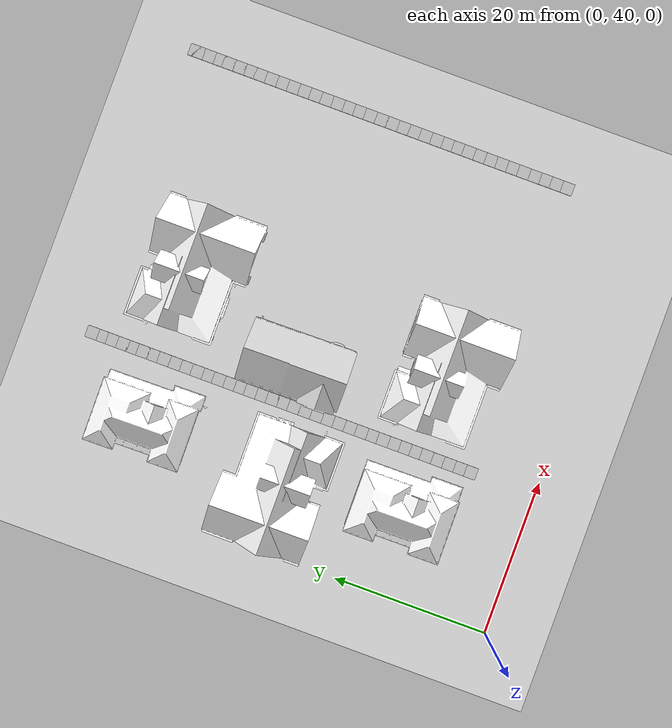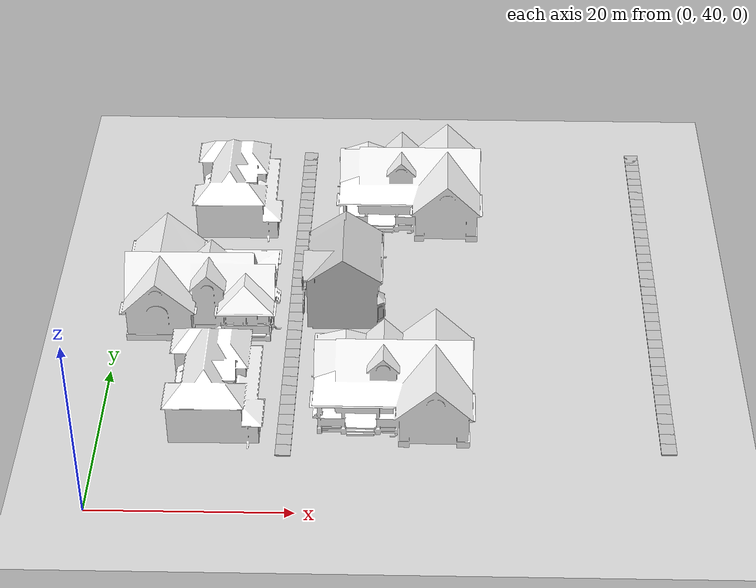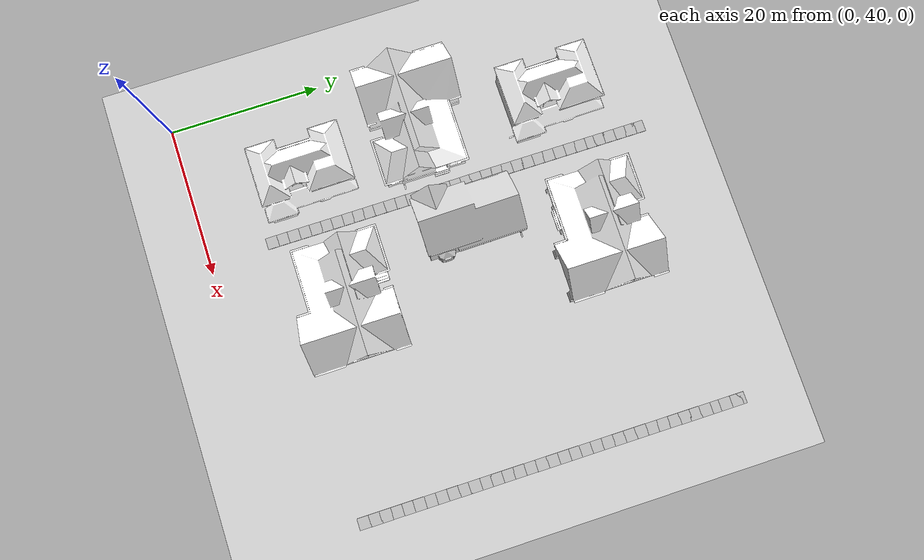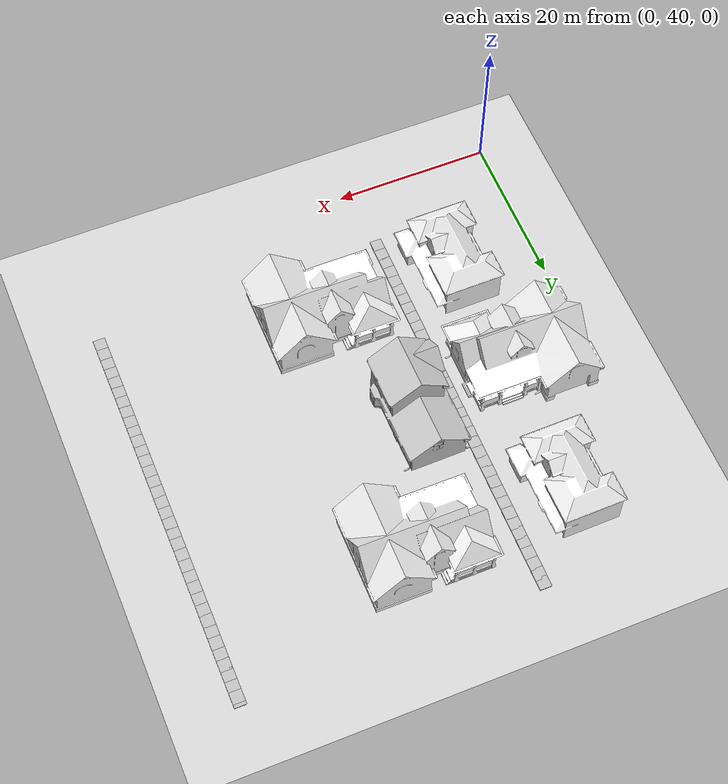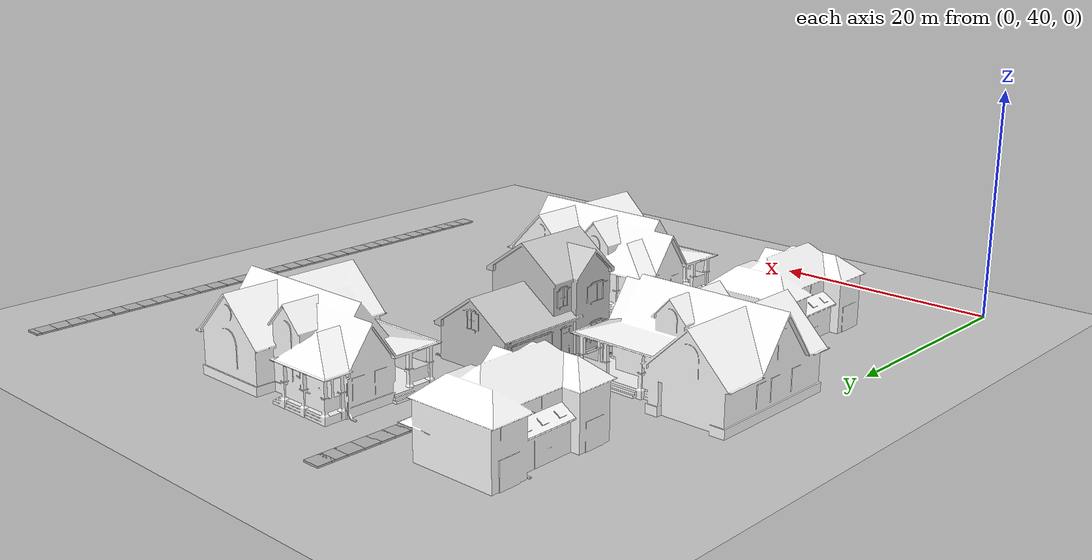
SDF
<sdf version="1.6">
 <world name="default">
  <model name="ground_plane">
   <pose>50 50 0 0 -0 0</pose>
   <static>1</static>
   <link name="link">
    <collision name="collision">
     <geometry><plane><normal>0 0 1</normal><size>100 100</size></plane></geometry>
     <surface>
      <contact><collide_bitmask>65535</collide_bitmask></contact>
      <friction><ode><mu>100</mu><mu2>50</mu2></ode></friction>
     </surface>
    </collision>
    <visual name="visual">
     <cast_shadows>0</cast_shadows>
     <geometry><plane><normal>0 0 1</normal><size>100 100</size></plane></geometry>
     <material>
      <script><uri>file://media/materials/scripts/gazebo.material</uri><name>Gazebo/Grey</name></script>
     </material>
    </visual>
   </link>
  </model>
  <model name="walkway_metal_straight_32">
   <static>1</static>
   <link name="link">
    <collision name="collision">
     <pose>0 0.762 0.076075 0 -0 0</pose>
     <geometry><box><size>1.524 1.524 0.15215</size></box></geometry>
    </collision>
    <visual name="visual">
     <geometry>
      <mesh><scale>0.001 0.001 0.001</scale><uri>model://walkway_metal_straight/meshes/mesh.obj</uri></mesh>
     </geometry>
    </visual>
   </link>
   <pose>18.3427 47.7684 0 0 -0 0</pose>
  </model>
  <model name="walkway_metal_straight_33">
   <static>1</static>
   <link name="link">
    <collision name="collision">
     <pose>0 0.762 0.076075 0 -0 0</pose>
     <geometry><box><size>1.524 1.524 0.15215</size></box></geometry>
    </collision>
    <visual name="visual">
     <geometry>
      <mesh><scale>0.001 0.001 0.001</scale><uri>model://walkway_metal_straight/meshes/mesh.obj</uri></mesh>
     </geometry>
    </visual>
   </link>
   <pose>18.3468 49.2696 0 0 -0 0</pose>
  </model>
  <model name="walkway_metal_straight_34">
   <static>1</static>
   <link name="link">
    <collision name="collision">
     <pose>0 0.762 0.076075 0 -0 0</pose>
     <geometry><box><size>1.524 1.524 0.15215</size></box></geometry>
    </collision>
    <visual name="visual">
     <geometry>
      <mesh><scale>0.001 0.001 0.001</scale><uri>model://walkway_metal_straight/meshes/mesh.obj</uri></mesh>
     </geometry>
    </visual>
   </link>
   <pose>18.3508 50.7068 0 0 -0 0</pose>
  </model>
  <model name="walkway_metal_straight_35">
   <static>1</static>
   <link name="link">
    <collision name="collision">
     <pose>0 0.762 0.076075 0 -0 0</pose>
     <geometry><box><size>1.524 1.524 0.15215</size></box></geometry>
    </collision>
    <visual name="visual">
     <geometry>
      <mesh><scale>0.001 0.001 0.001</scale><uri>model://walkway_metal_straight/meshes/mesh.obj</uri></mesh>
     </geometry>
    </visual>
   </link>
   <pose>18.3547 52.1825 0 0 -0 0</pose>
  </model>
  <model name="walkway_metal_straight_36">
   <static>1</static>
   <link name="link">
    <collision name="collision">
     <pose>0 0.762 0.076075 0 -0 0</pose>
     <geometry><box><size>1.524 1.524 0.15215</size></box></geometry>
    </collision>
    <visual name="visual">
     <geometry>
      <mesh><scale>0.001 0.001 0.001</scale><uri>model://walkway_metal_straight/meshes/mesh.obj</uri></mesh>
     </geometry>
    </visual>
   </link>
   <pose>18.3625 53.6972 0 0 -0 0</pose>
  </model>
  <model name="walkway_metal_straight_37">
   <static>1</static>
   <link name="link">
    <collision name="collision">
     <pose>0 0.762 0.076075 0 -0 0</pose>
     <geometry><box><size>1.524 1.524 0.15215</size></box></geometry>
    </collision>
    <visual name="visual">
     <geometry>
      <mesh><scale>0.001 0.001 0.001</scale><uri>model://walkway_metal_straight/meshes/mesh.obj</uri></mesh>
     </geometry>
    </visual>
   </link>
   <pose>18.3663 55.1075 0 0 -0 0</pose>
  </model>
  <model name="walkway_metal_straight_38">
   <static>1</static>
   <link name="link">
    <collision name="collision">
     <pose>0 0.762 0.076075 0 -0 0</pose>
     <geometry><box><size>1.524 1.524 0.15215</size></box></geometry>
    </collision>
    <visual name="visual">
     <geometry>
      <mesh><scale>0.001 0.001 0.001</scale><uri>model://walkway_metal_straight/meshes/mesh.obj</uri></mesh>
     </geometry>
    </visual>
   </link>
   <pose>18.3704 56.6101 0 0 -0 0</pose>
  </model>
  <model name="walkway_metal_straight_39">
   <static>1</static>
   <link name="link">
    <collision name="collision">
     <pose>0 0.762 0.076075 0 -0 0</pose>
     <geometry><box><size>1.524 1.524 0.15215</size></box></geometry>
    </collision>
    <visual name="visual">
     <geometry>
      <mesh><scale>0.001 0.001 0.001</scale><uri>model://walkway_metal_straight/meshes/mesh.obj</uri></mesh>
     </geometry>
    </visual>
   </link>
   <pose>18.3744 58.0331 0 0 -0 0</pose>
  </model>
  <model name="walkway_metal_straight_40">
   <static>1</static>
   <link name="link">
    <collision name="collision">
     <pose>0 0.762 0.076075 0 -0 0</pose>
     <geometry><box><size>1.524 1.524 0.15215</size></box></geometry>
    </collision>
    <visual name="visual">
     <geometry>
      <mesh><scale>0.001 0.001 0.001</scale><uri>model://walkway_metal_straight/meshes/mesh.obj</uri></mesh>
     </geometry>
    </visual>
   </link>
   <pose>18.3739 59.4805 0 0 -0 0</pose>
  </model>
  <model name="walkway_metal_straight_41">
   <static>1</static>
   <link name="link">
    <collision name="collision">
     <pose>0 0.762 0.076075 0 -0 0</pose>
     <geometry><box><size>1.524 1.524 0.15215</size></box></geometry>
    </collision>
    <visual name="visual">
     <geometry>
      <mesh><scale>0.001 0.001 0.001</scale><uri>model://walkway_metal_straight/meshes/mesh.obj</uri></mesh>
     </geometry>
    </visual>
   </link>
   <pose>18.3743 60.9514 0 0 -0 0</pose>
  </model>
  <model name="walkway_metal_straight_42">
   <static>1</static>
   <link name="link">
    <collision name="collision">
     <pose>0 0.762 0.076075 0 -0 0</pose>
     <geometry><box><size>1.524 1.524 0.15215</size></box></geometry>
    </collision>
    <visual name="visual">
     <geometry>
      <mesh><scale>0.001 0.001 0.001</scale><uri>model://walkway_metal_straight/meshes/mesh.obj</uri></mesh>
     </geometry>
    </visual>
   </link>
   <pose>18.3759 62.3786 0 0 -0 0</pose>
  </model>
  <model name="walkway_metal_straight_43">
   <static>1</static>
   <link name="link">
    <collision name="collision">
     <pose>0 0.762 0.076075 0 -0 0</pose>
     <geometry><box><size>1.524 1.524 0.15215</size></box></geometry>
    </collision>
    <visual name="visual">
     <geometry>
      <mesh><scale>0.001 0.001 0.001</scale><uri>model://walkway_metal_straight/meshes/mesh.obj</uri></mesh>
     </geometry>
    </visual>
   </link>
   <pose>18.3772 63.8674 0 0 -0 0</pose>
  </model>
  <model name="walkway_metal_straight_44">
   <static>1</static>
   <link name="link">
    <collision name="collision">
     <pose>0 0.762 0.076075 0 -0 0</pose>
     <geometry><box><size>1.524 1.524 0.15215</size></box></geometry>
    </collision>
    <visual name="visual">
     <geometry>
      <mesh><scale>0.001 0.001 0.001</scale><uri>model://walkway_metal_straight/meshes/mesh.obj</uri></mesh>
     </geometry>
    </visual>
   </link>
   <pose>18.3815 65.3735 0 0 -0 0</pose>
  </model>
  <model name="walkway_metal_straight_45">
   <static>1</static>
   <link name="link">
    <collision name="collision">
     <pose>0 0.762 0.076075 0 -0 0</pose>
     <geometry><box><size>1.524 1.524 0.15215</size></box></geometry>
    </collision>
    <visual name="visual">
     <geometry>
      <mesh><scale>0.001 0.001 0.001</scale><uri>model://walkway_metal_straight/meshes/mesh.obj</uri></mesh>
     </geometry>
    </visual>
   </link>
   <pose>18.3856 66.8805 0 0 -0 0</pose>
  </model>
  <model name="walkway_metal_straight_46">
   <static>1</static>
   <link name="link">
    <collision name="collision">
     <pose>0 0.762 0.076075 0 -0 0</pose>
     <geometry><box><size>1.524 1.524 0.15215</size></box></geometry>
    </collision>
    <visual name="visual">
     <geometry>
      <mesh><scale>0.001 0.001 0.001</scale><uri>model://walkway_metal_straight/meshes/mesh.obj</uri></mesh>
     </geometry>
    </visual>
   </link>
   <pose>18.3831 68.3481 0 0 -0 0</pose>
  </model>
  <model name="walkway_metal_straight_47">
   <static>1</static>
   <link name="link">
    <collision name="collision">
     <pose>0 0.762 0.076075 0 -0 0</pose>
     <geometry><box><size>1.524 1.524 0.15215</size></box></geometry>
    </collision>
    <visual name="visual">
     <geometry>
      <mesh><scale>0.001 0.001 0.001</scale><uri>model://walkway_metal_straight/meshes/mesh.obj</uri></mesh>
     </geometry>
    </visual>
   </link>
   <pose>18.3874 69.8743 0 0 -0 0</pose>
  </model>
  <model name="walkway_metal_straight_48">
   <static>1</static>
   <link name="link">
    <collision name="collision">
     <pose>0 0.762 0.076075 0 -0 0</pose>
     <geometry><box><size>1.524 1.524 0.15215</size></box></geometry>
    </collision>
    <visual name="visual">
     <geometry>
      <mesh><scale>0.001 0.001 0.001</scale><uri>model://walkway_metal_straight/meshes/mesh.obj</uri></mesh>
     </geometry>
    </visual>
   </link>
   <pose>18.3874 71.4001 0 0 -0 0</pose>
  </model>
  <model name="walkway_metal_straight_49">
   <static>1</static>
   <link name="link">
    <collision name="collision">
     <pose>0 0.762 0.076075 0 -0 0</pose>
     <geometry><box><size>1.524 1.524 0.15215</size></box></geometry>
    </collision>
    <visual name="visual">
     <geometry>
      <mesh><scale>0.001 0.001 0.001</scale><uri>model://walkway_metal_straight/meshes/mesh.obj</uri></mesh>
     </geometry>
    </visual>
   </link>
   <pose>18.3915 72.8605 0 0 -0 0</pose>
  </model>
  <model name="walkway_metal_straight_50">
   <static>1</static>
   <link name="link">
    <collision name="collision">
     <pose>0 0.762 0.076075 0 -0 0</pose>
     <geometry><box><size>1.524 1.524 0.15215</size></box></geometry>
    </collision>
    <visual name="visual">
     <geometry>
      <mesh><scale>0.001 0.001 0.001</scale><uri>model://walkway_metal_straight/meshes/mesh.obj</uri></mesh>
     </geometry>
    </visual>
   </link>
   <pose>18.3838 74.2724 0 0 -0 0</pose>
  </model>
  <model name="walkway_metal_straight_51">
   <static>1</static>
   <link name="link">
    <collision name="collision">
     <pose>0 0.762 0.076075 0 -0 0</pose>
     <geometry><box><size>1.524 1.524 0.15215</size></box></geometry>
    </collision>
    <visual name="visual">
     <geometry>
      <mesh><scale>0.001 0.001 0.001</scale><uri>model://walkway_metal_straight/meshes/mesh.obj</uri></mesh>
     </geometry>
    </visual>
   </link>
   <pose>18.38 75.6675 0 0 -0 0</pose>
  </model>
  <model name="walkway_metal_straight_52">
   <static>1</static>
   <link name="link">
    <collision name="collision">
     <pose>0 0.762 0.076075 0 -0 0</pose>
     <geometry><box><size>1.524 1.524 0.15215</size></box></geometry>
    </collision>
    <visual name="visual">
     <geometry>
      <mesh><scale>0.001 0.001 0.001</scale><uri>model://walkway_metal_straight/meshes/mesh.obj</uri></mesh>
     </geometry>
    </visual>
   </link>
   <pose>18.3765 77.1832 0 0 -0 0</pose>
  </model>
  <model name="walkway_metal_straight_53">
   <static>1</static>
   <link name="link">
    <collision name="collision">
     <pose>0 0.762 0.076075 0 -0 0</pose>
     <geometry><box><size>1.524 1.524 0.15215</size></box></geometry>
    </collision>
    <visual name="visual">
     <geometry>
      <mesh><scale>0.001 0.001 0.001</scale><uri>model://walkway_metal_straight/meshes/mesh.obj</uri></mesh>
     </geometry>
    </visual>
   </link>
   <pose>18.3821 78.6177 0 0 -0 0</pose>
  </model>
  <model name="walkway_metal_straight_54">
   <static>1</static>
   <link name="link">
    <collision name="collision">
     <pose>0 0.762 0.076075 0 -0 0</pose>
     <geometry><box><size>1.524 1.524 0.15215</size></box></geometry>
    </collision>
    <visual name="visual">
     <geometry>
      <mesh><scale>0.001 0.001 0.001</scale><uri>model://walkway_metal_straight/meshes/mesh.obj</uri></mesh>
     </geometry>
    </visual>
   </link>
   <pose>18.3854 80.0339 0 0 -0 0</pose>
  </model>
  <model name="walkway_metal_straight_55">
   <static>1</static>
   <link name="link">
    <collision name="collision">
     <pose>0 0.762 0.076075 0 -0 0</pose>
     <geometry><box><size>1.524 1.524 0.15215</size></box></geometry>
    </collision>
    <visual name="visual">
     <geometry>
      <mesh><scale>0.001 0.001 0.001</scale><uri>model://walkway_metal_straight/meshes/mesh.obj</uri></mesh>
     </geometry>
    </visual>
   </link>
   <pose>18.3895 81.4542 0 0 -0 0</pose>
  </model>
  <model name="walkway_metal_straight_56">
   <static>1</static>
   <link name="link">
    <collision name="collision">
     <pose>0 0.762 0.076075 0 -0 0</pose>
     <geometry><box><size>1.524 1.524 0.15215</size></box></geometry>
    </collision>
    <visual name="visual">
     <geometry>
      <mesh><scale>0.001 0.001 0.001</scale><uri>model://walkway_metal_straight/meshes/mesh.obj</uri></mesh>
     </geometry>
    </visual>
   </link>
   <pose>18.3931 82.852 0 0 -0 0</pose>
  </model>
  <model name="walkway_metal_straight_57">
   <static>1</static>
   <link name="link">
    <collision name="collision">
     <pose>0 0.762 0.076075 0 -0 0</pose>
     <geometry><box><size>1.524 1.524 0.15215</size></box></geometry>
    </collision>
    <visual name="visual">
     <geometry>
      <mesh><scale>0.001 0.001 0.001</scale><uri>model://walkway_metal_straight/meshes/mesh.obj</uri></mesh>
     </geometry>
    </visual>
   </link>
   <pose>18.3972 84.3296 0 0 -0 0</pose>
  </model>
  <model name="walkway_metal_straight_58">
   <static>1</static>
   <link name="link">
    <collision name="collision">
     <pose>0 0.762 0.076075 0 -0 0</pose>
     <geometry><box><size>1.524 1.524 0.15215</size></box></geometry>
    </collision>
    <visual name="visual">
     <geometry>
      <mesh><scale>0.001 0.001 0.001</scale><uri>model://walkway_metal_straight/meshes/mesh.obj</uri></mesh>
     </geometry>
    </visual>
   </link>
   <pose>18.4013 85.7673 0 0 -0 0</pose>
  </model>
  <model name="walkway_metal_straight_59">
   <static>1</static>
   <link name="link">
    <collision name="collision">
     <pose>0 0.762 0.076075 0 -0 0</pose>
     <geometry><box><size>1.524 1.524 0.15215</size></box></geometry>
    </collision>
    <visual name="visual">
     <geometry>
      <mesh><scale>0.001 0.001 0.001</scale><uri>model://walkway_metal_straight/meshes/mesh.obj</uri></mesh>
     </geometry>
    </visual>
   </link>
   <pose>18.4035 87.2813 0 0 -0 0</pose>
  </model>
  <model name="walkway_metal_straight_60">
   <static>1</static>
   <link name="link">
    <collision name="collision">
     <pose>0 0.762 0.076075 0 -0 0</pose>
     <geometry><box><size>1.524 1.524 0.15215</size></box></geometry>
    </collision>
    <visual name="visual">
     <geometry>
      <mesh><scale>0.001 0.001 0.001</scale><uri>model://walkway_metal_straight/meshes/mesh.obj</uri></mesh>
     </geometry>
    </visual>
   </link>
   <pose>18.4076 88.7784 0 0 -0 0</pose>
  </model>
  <model name="walkway_metal_straight_61">
   <static>1</static>
   <link name="link">
    <collision name="collision">
     <pose>0 0.762 0.076075 0 -0 0</pose>
     <geometry><box><size>1.524 1.524 0.15215</size></box></geometry>
    </collision>
    <visual name="visual">
     <geometry>
      <mesh><scale>0.001 0.001 0.001</scale><uri>model://walkway_metal_straight/meshes/mesh.obj</uri></mesh>
     </geometry>
    </visual>
   </link>
   <pose>18.4114 90.2161 0 0 -0 0</pose>
  </model>
  <model name="walkway_metal_straight_62">
   <static>1</static>
   <link name="link">
    <collision name="collision">
     <pose>0 0.762 0.076075 0 -0 0</pose>
     <geometry><box><size>1.524 1.524 0.15215</size></box></geometry>
    </collision>
    <visual name="visual">
     <geometry>
      <mesh><scale>0.001 0.001 0.001</scale><uri>model://walkway_metal_straight/meshes/mesh.obj</uri></mesh>
     </geometry>
    </visual>
   </link>
   <pose>18.415 91.577 0 0 -0 0</pose>
  </model>
  <model name="walkway_metal_straight_63">
   <static>1</static>
   <link name="link">
    <collision name="collision">
     <pose>0 0.762 0.076075 0 -0 0</pose>
     <geometry><box><size>1.524 1.524 0.15215</size></box></geometry>
    </collision>
    <visual name="visual">
     <geometry>
      <mesh><scale>0.001 0.001 0.001</scale><uri>model://walkway_metal_straight/meshes/mesh.obj</uri></mesh>
     </geometry>
    </visual>
   </link>
   <pose>18.4191 92.9368 0 0 -0 0</pose>
  </model>
  <model name="walkway_metal_straight_64">
   <static>1</static>
   <link name="link">
    <collision name="collision">
     <pose>0 0.762 0.076075 0 -0 0</pose>
     <geometry><box><size>1.524 1.524 0.15215</size></box></geometry>
    </collision>
    <visual name="visual">
     <geometry>
      <mesh><scale>0.001 0.001 0.001</scale><uri>model://walkway_metal_straight/meshes/mesh.obj</uri></mesh>
     </geometry>
    </visual>
   </link>
   <pose>18.4227 94.2966 0 0 -0 0</pose>
  </model>
  <model name="walkway_metal_straight_65">
   <static>1</static>
   <link name="link">
    <collision name="collision">
     <pose>0 0.762 0.076075 0 -0 0</pose>
     <geometry><box><size>1.524 1.524 0.15215</size></box></geometry>
    </collision>
    <visual name="visual">
     <geometry>
      <mesh><scale>0.001 0.001 0.001</scale><uri>model://walkway_metal_straight/meshes/mesh.obj</uri></mesh>
     </geometry>
    </visual>
   </link>
   <pose>18.4268 95.7938 0 0 -0 0</pose>
  </model>
  <model name="walkway_metal_straight_66">
   <static>1</static>
   <link name="link">
    <collision name="collision">
     <pose>0 0.762 0.076075 0 -0 0</pose>
     <geometry><box><size>1.524 1.524 0.15215</size></box></geometry>
    </collision>
    <visual name="visual">
     <geometry>
      <mesh><scale>0.001 0.001 0.001</scale><uri>model://walkway_metal_straight/meshes/mesh.obj</uri></mesh>
     </geometry>
    </visual>
   </link>
   <pose>18.4306 97.1741 0 0 -0 0</pose>
  </model>
  <model name="walkway_metal_straight_67">
   <static>1</static>
   <link name="link">
    <collision name="collision">
     <pose>0 0.762 0.076075 0 -0 0</pose>
     <geometry><box><size>1.524 1.524 0.15215</size></box></geometry>
    </collision>
    <visual name="visual">
     <geometry>
      <mesh><scale>0.001 0.001 0.001</scale><uri>model://walkway_metal_straight/meshes/mesh.obj</uri></mesh>
     </geometry>
    </visual>
   </link>
   <pose>18.4339 98.3782 0 0 -0 0</pose>
  </model>
  <model name="House 2_0">
   <static>1</static>
   <link name="link">
    <collision name="collision">
     <geometry><mesh><uri>model://house_2/meshes/house_2.dae</uri><scale>1.5 1.5 1.5</scale></mesh></geometry>
    </collision>
    <visual name="visual">
     <geometry><mesh><uri>model://house_2/meshes/house_2.dae</uri><scale>1.5 1.5 1.5</scale></mesh></geometry>
     <material>
      <script>
       <uri>model://house_2/materials/scripts</uri>
       <uri>model://house_2/materials/textures</uri>
       <uri>model://house_1/materials/textures</uri>
       <name>House_2/Diffuse</name>
      </script>
      <shader type="normal_map_tangent_space">
       <normal_map>model://house_1/materials/textures/House_1_Normal.png</normal_map>
      </shader>
     </material>
    </visual>
   </link>
   <pose>10.7058 56.2962 0 0 0 -1.56424</pose>
  </model>
  <model name="House 1_0">
   <static>1</static>
   <link name="link">
    <collision name="collision">
     <geometry><mesh><uri>model://house_1/meshes/house_1.dae</uri><scale>1.5 1.5 1.5</scale></mesh></geometry>
    </collision>
    <visual name="visual">
     <geometry><mesh><uri>model://house_1/meshes/house_1.dae</uri><scale>1.5 1.5 1.5</scale></mesh></geometry>
     <material>
      <script>
       <uri>model://house_1/materials/scripts</uri>
       <uri>model://house_1/materials/textures</uri>
       <name>House_1/Diffuse</name>
      </script>
      <shader type="normal_map_tangent_space"><normal_map>House_1_Normal.png</normal_map></shader>
     </material>
    </visual>
   </link>
   <pose>8.29979 70.7903 0 0 0 -3.13896</pose>
  </model>
  <model name="House 2_1">
   <static>1</static>
   <link name="link">
    <collision name="collision">
     <geometry><mesh><uri>model://house_2/meshes/house_2.dae</uri><scale>1.5 1.5 1.5</scale></mesh></geometry>
    </collision>
    <visual name="visual">
     <geometry><mesh><uri>model://house_2/meshes/house_2.dae</uri><scale>1.5 1.5 1.5</scale></mesh></geometry>
     <material>
      <script>
       <uri>model://house_2/materials/scripts</uri>
       <uri>model://house_2/materials/textures</uri>
       <uri>model://house_1/materials/textures</uri>
       <name>House_2/Diffuse</name>
      </script>
      <shader type="normal_map_tangent_space">
       <normal_map>model://house_1/materials/textures/House_1_Normal.png</normal_map>
      </shader>
     </material>
    </visual>
   </link>
   <pose>10.305 89.877 0 0 0 -1.5588</pose>
  </model>
  <model name="House 1_1">
   <static>1</static>
   <link name="link">
    <collision name="collision">
     <geometry><mesh><uri>model://house_1/meshes/house_1.dae</uri><scale>1.5 1.5 1.5</scale></mesh></geometry>
    </collision>
    <visual name="visual">
     <geometry><mesh><uri>model://house_1/meshes/house_1.dae</uri><scale>1.5 1.5 1.5</scale></mesh></geometry>
     <material>
      <script>
       <uri>model://house_1/materials/scripts</uri>
       <uri>model://house_1/materials/textures</uri>
       <name>House_1/Diffuse</name>
      </script>
      <shader type="normal_map_tangent_space"><normal_map>House_1_Normal.png</normal_map></shader>
     </material>
    </visual>
   </link>
   <pose>30.4226 89.5744 0 0 -0 0</pose>
  </model>
  <model name="House 3_0">
   <static>1</static>
   <link name="link">
    <collision name="collision">
     <geometry><mesh><uri>model://house_3/meshes/house_3.dae</uri><scale>1.5 1.5 1.5</scale></mesh></geometry>
    </collision>
    <visual name="visual">
     <geometry><mesh><uri>model://house_3/meshes/house_3.dae</uri><scale>1.5 1.5 1.5</scale></mesh></geometry>
     <material>
      <script>
       <uri>model://house_3/materials/scripts</uri>
       <uri>model://house_3/materials/textures</uri>
       <uri>model://house_1/materials/textures</uri>
       <name>House_3/Diffuse</name>
      </script>
      <shader type="normal_map_tangent_space">
       <normal_map>model://house_1/materials/textures/House_1_Normal.png</normal_map>
      </shader>
     </material>
    </visual>
   </link>
   <pose>23.4496 74.1932 0 0 -0 1.58262</pose>
  </model>
  <model name="House 1_2">
   <static>1</static>
   <link name="link">
    <collision name="collision">
     <geometry><mesh><uri>model://house_1/meshes/house_1.dae</uri><scale>1.5 1.5 1.5</scale></mesh></geometry>
    </collision>
    <visual name="visual">
     <geometry><mesh><uri>model://house_1/meshes/house_1.dae</uri><scale>1.5 1.5 1.5</scale></mesh></geometry>
     <material>
      <script>
       <uri>model://house_1/materials/scripts</uri>
       <uri>model://house_1/materials/textures</uri>
       <name>House_1/Diffuse</name>
      </script>
      <shader type="normal_map_tangent_space"><normal_map>House_1_Normal.png</normal_map></shader>
     </material>
    </visual>
   </link>
   <pose>29.2126 55.9999 0 0 -0 0</pose>
  </model>
  <model name="walkway_metal_straight_102">
   <static>1</static>
   <link name="link">
    <collision name="collision">
     <pose>0 0.762 0.076075 0 -0 0</pose>
     <geometry><box><size>1.524 1.524 0.15215</size></box></geometry>
    </collision>
    <visual name="visual">
     <geometry>
      <mesh><scale>0.001 0.001 0.001</scale><uri>model://walkway_metal_straight/meshes/mesh.obj</uri></mesh>
     </geometry>
    </visual>
   </link>
   <pose>55.983 48.6185 0 0 -0 0</pose>
  </model>
  <model name="walkway_metal_straight_103">
   <static>1</static>
   <link name="link">
    <collision name="collision">
     <pose>0 0.762 0.076075 0 -0 0</pose>
     <geometry><box><size>1.524 1.524 0.15215</size></box></geometry>
    </collision>
    <visual name="visual">
     <geometry>
      <mesh><scale>0.001 0.001 0.001</scale><uri>model://walkway_metal_straight/meshes/mesh.obj</uri></mesh>
     </geometry>
    </visual>
   </link>
   <pose>55.9887 50.0969 0 0 -0 0</pose>
  </model>
  <model name="walkway_metal_straight_104">
   <static>1</static>
   <link name="link">
    <collision name="collision">
     <pose>0 0.762 0.076075 0 -0 0</pose>
     <geometry><box><size>1.524 1.524 0.15215</size></box></geometry>
    </collision>
    <visual name="visual">
     <geometry>
      <mesh><scale>0.001 0.001 0.001</scale><uri>model://walkway_metal_straight/meshes/mesh.obj</uri></mesh>
     </geometry>
    </visual>
   </link>
   <pose>55.993 51.5177 0 0 -0 0</pose>
  </model>
  <model name="walkway_metal_straight_105">
   <static>1</static>
   <link name="link">
    <collision name="collision">
     <pose>0 0.762 0.076075 0 -0 0</pose>
     <geometry><box><size>1.524 1.524 0.15215</size></box></geometry>
    </collision>
    <visual name="visual">
     <geometry>
      <mesh><scale>0.001 0.001 0.001</scale><uri>model://walkway_metal_straight/meshes/mesh.obj</uri></mesh>
     </geometry>
    </visual>
   </link>
   <pose>55.9853 53.0093 0 0 -0 0</pose>
  </model>
  <model name="walkway_metal_straight_106">
   <static>1</static>
   <link name="link">
    <collision name="collision">
     <pose>0 0.762 0.076075 0 -0 0</pose>
     <geometry><box><size>1.524 1.524 0.15215</size></box></geometry>
    </collision>
    <visual name="visual">
     <geometry>
      <mesh><scale>0.001 0.001 0.001</scale><uri>model://walkway_metal_straight/meshes/mesh.obj</uri></mesh>
     </geometry>
    </visual>
   </link>
   <pose>55.9905 54.4686 0 0 -0 0</pose>
  </model>
  <model name="walkway_metal_straight_107">
   <static>1</static>
   <link name="link">
    <collision name="collision">
     <pose>0 0.762 0.076075 0 -0 0</pose>
     <geometry><box><size>1.524 1.524 0.15215</size></box></geometry>
    </collision>
    <visual name="visual">
     <geometry>
      <mesh><scale>0.001 0.001 0.001</scale><uri>model://walkway_metal_straight/meshes/mesh.obj</uri></mesh>
     </geometry>
    </visual>
   </link>
   <pose>55.9936 55.9093 0 0 -0 0</pose>
  </model>
  <model name="walkway_metal_straight_108">
   <static>1</static>
   <link name="link">
    <collision name="collision">
     <pose>0 0.762 0.076075 0 -0 0</pose>
     <geometry><box><size>1.524 1.524 0.15215</size></box></geometry>
    </collision>
    <visual name="visual">
     <geometry>
      <mesh><scale>0.001 0.001 0.001</scale><uri>model://walkway_metal_straight/meshes/mesh.obj</uri></mesh>
     </geometry>
    </visual>
   </link>
   <pose>55.9978 57.4275 0 0 -0 0</pose>
  </model>
  <model name="walkway_metal_straight_109">
   <static>1</static>
   <link name="link">
    <collision name="collision">
     <pose>0 0.762 0.076075 0 -0 0</pose>
     <geometry><box><size>1.524 1.524 0.15215</size></box></geometry>
    </collision>
    <visual name="visual">
     <geometry>
      <mesh><scale>0.001 0.001 0.001</scale><uri>model://walkway_metal_straight/meshes/mesh.obj</uri></mesh>
     </geometry>
    </visual>
   </link>
   <pose>56.0019 58.8884 0 0 -0 0</pose>
  </model>
  <model name="walkway_metal_straight_110">
   <static>1</static>
   <link name="link">
    <collision name="collision">
     <pose>0 0.762 0.076075 0 -0 0</pose>
     <geometry><box><size>1.524 1.524 0.15215</size></box></geometry>
    </collision>
    <visual name="visual">
     <geometry>
      <mesh><scale>0.001 0.001 0.001</scale><uri>model://walkway_metal_straight/meshes/mesh.obj</uri></mesh>
     </geometry>
    </visual>
   </link>
   <pose>56.0061 60.3675 0 0 -0 0</pose>
  </model>
  <model name="walkway_metal_straight_111">
   <static>1</static>
   <link name="link">
    <collision name="collision">
     <pose>0 0.762 0.076075 0 -0 0</pose>
     <geometry><box><size>1.524 1.524 0.15215</size></box></geometry>
    </collision>
    <visual name="visual">
     <geometry>
      <mesh><scale>0.001 0.001 0.001</scale><uri>model://walkway_metal_straight/meshes/mesh.obj</uri></mesh>
     </geometry>
    </visual>
   </link>
   <pose>56.0173 61.8291 0 0 -0 0</pose>
  </model>
  <model name="walkway_metal_straight_112">
   <static>1</static>
   <link name="link">
    <collision name="collision">
     <pose>0 0.762 0.076075 0 -0 0</pose>
     <geometry><box><size>1.524 1.524 0.15215</size></box></geometry>
    </collision>
    <visual name="visual">
     <geometry>
      <mesh><scale>0.001 0.001 0.001</scale><uri>model://walkway_metal_straight/meshes/mesh.obj</uri></mesh>
     </geometry>
    </visual>
   </link>
   <pose>56.0201 63.2108 0 0 -0 0</pose>
  </model>
  <model name="walkway_metal_straight_113">
   <static>1</static>
   <link name="link">
    <collision name="collision">
     <pose>0 0.762 0.076075 0 -0 0</pose>
     <geometry><box><size>1.524 1.524 0.15215</size></box></geometry>
    </collision>
    <visual name="visual">
     <geometry>
      <mesh><scale>0.001 0.001 0.001</scale><uri>model://walkway_metal_straight/meshes/mesh.obj</uri></mesh>
     </geometry>
    </visual>
   </link>
   <pose>56.0253 64.7105 0 0 -0 0</pose>
  </model>
  <model name="walkway_metal_straight_114">
   <static>1</static>
   <link name="link">
    <collision name="collision">
     <pose>0 0.762 0.076075 0 -0 0</pose>
     <geometry><box><size>1.524 1.524 0.15215</size></box></geometry>
    </collision>
    <visual name="visual">
     <geometry>
      <mesh><scale>0.001 0.001 0.001</scale><uri>model://walkway_metal_straight/meshes/mesh.obj</uri></mesh>
     </geometry>
    </visual>
   </link>
   <pose>56.0286 66.1102 0 0 -0 0</pose>
  </model>
  <model name="walkway_metal_straight_115">
   <static>1</static>
   <link name="link">
    <collision name="collision">
     <pose>0 0.762 0.076075 0 -0 0</pose>
     <geometry><box><size>1.524 1.524 0.15215</size></box></geometry>
    </collision>
    <visual name="visual">
     <geometry>
      <mesh><scale>0.001 0.001 0.001</scale><uri>model://walkway_metal_straight/meshes/mesh.obj</uri></mesh>
     </geometry>
    </visual>
   </link>
   <pose>56.0326 67.6112 0 0 -0 0</pose>
  </model>
  <model name="walkway_metal_straight_116">
   <static>1</static>
   <link name="link">
    <collision name="collision">
     <pose>0 0.762 0.076075 0 -0 0</pose>
     <geometry><box><size>1.524 1.524 0.15215</size></box></geometry>
    </collision>
    <visual name="visual">
     <geometry>
      <mesh><scale>0.001 0.001 0.001</scale><uri>model://walkway_metal_straight/meshes/mesh.obj</uri></mesh>
     </geometry>
    </visual>
   </link>
   <pose>56.0367 69.0703 0 0 -0 0</pose>
  </model>
  <model name="walkway_metal_straight_117">
   <static>1</static>
   <link name="link">
    <collision name="collision">
     <pose>0 0.762 0.076075 0 -0 0</pose>
     <geometry><box><size>1.524 1.524 0.15215</size></box></geometry>
    </collision>
    <visual name="visual">
     <geometry>
      <mesh><scale>0.001 0.001 0.001</scale><uri>model://walkway_metal_straight/meshes/mesh.obj</uri></mesh>
     </geometry>
    </visual>
   </link>
   <pose>56.0409 70.569 0 0 -0 0</pose>
  </model>
  <model name="walkway_metal_straight_118">
   <static>1</static>
   <link name="link">
    <collision name="collision">
     <pose>0 0.762 0.076075 0 -0 0</pose>
     <geometry><box><size>1.524 1.524 0.15215</size></box></geometry>
    </collision>
    <visual name="visual">
     <geometry>
      <mesh><scale>0.001 0.001 0.001</scale><uri>model://walkway_metal_straight/meshes/mesh.obj</uri></mesh>
     </geometry>
    </visual>
   </link>
   <pose>56.0488 72.043 0 0 -0 0</pose>
  </model>
  <model name="walkway_metal_straight_119">
   <static>1</static>
   <link name="link">
    <collision name="collision">
     <pose>0 0.762 0.076075 0 -0 0</pose>
     <geometry><box><size>1.524 1.524 0.15215</size></box></geometry>
    </collision>
    <visual name="visual">
     <geometry>
      <mesh><scale>0.001 0.001 0.001</scale><uri>model://walkway_metal_straight/meshes/mesh.obj</uri></mesh>
     </geometry>
    </visual>
   </link>
   <pose>56.0535 73.503 0 0 -0 0</pose>
  </model>
  <model name="walkway_metal_straight_120">
   <static>1</static>
   <link name="link">
    <collision name="collision">
     <pose>0 0.762 0.076075 0 -0 0</pose>
     <geometry><box><size>1.524 1.524 0.15215</size></box></geometry>
    </collision>
    <visual name="visual">
     <geometry>
      <mesh><scale>0.001 0.001 0.001</scale><uri>model://walkway_metal_straight/meshes/mesh.obj</uri></mesh>
     </geometry>
    </visual>
   </link>
   <pose>56.0566 75.0015 0 0 -0 0</pose>
  </model>
  <model name="walkway_metal_straight_121">
   <static>1</static>
   <link name="link">
    <collision name="collision">
     <pose>0 0.762 0.076075 0 -0 0</pose>
     <geometry><box><size>1.524 1.524 0.15215</size></box></geometry>
    </collision>
    <visual name="visual">
     <geometry>
      <mesh><scale>0.001 0.001 0.001</scale><uri>model://walkway_metal_straight/meshes/mesh.obj</uri></mesh>
     </geometry>
    </visual>
   </link>
   <pose>56.0608 76.4023 0 0 -0 0</pose>
  </model>
  <model name="walkway_metal_straight_122">
   <static>1</static>
   <link name="link">
    <collision name="collision">
     <pose>0 0.762 0.076075 0 -0 0</pose>
     <geometry><box><size>1.524 1.524 0.15215</size></box></geometry>
    </collision>
    <visual name="visual">
     <geometry>
      <mesh><scale>0.001 0.001 0.001</scale><uri>model://walkway_metal_straight/meshes/mesh.obj</uri></mesh>
     </geometry>
    </visual>
   </link>
   <pose>56.0649 77.8623 0 0 -0 0</pose>
  </model>
  <model name="walkway_metal_straight_123">
   <static>1</static>
   <link name="link">
    <collision name="collision">
     <pose>0 0.762 0.076075 0 -0 0</pose>
     <geometry><box><size>1.524 1.524 0.15215</size></box></geometry>
    </collision>
    <visual name="visual">
     <geometry>
      <mesh><scale>0.001 0.001 0.001</scale><uri>model://walkway_metal_straight/meshes/mesh.obj</uri></mesh>
     </geometry>
    </visual>
   </link>
   <pose>56.0654 79.353 0 0 -0 0</pose>
  </model>
  <model name="walkway_metal_straight_124">
   <static>1</static>
   <link name="link">
    <collision name="collision">
     <pose>0 0.762 0.076075 0 -0 0</pose>
     <geometry><box><size>1.524 1.524 0.15215</size></box></geometry>
    </collision>
    <visual name="visual">
     <geometry>
      <mesh><scale>0.001 0.001 0.001</scale><uri>model://walkway_metal_straight/meshes/mesh.obj</uri></mesh>
     </geometry>
    </visual>
   </link>
   <pose>56.0701 80.8516 0 0 -0 0</pose>
  </model>
  <model name="walkway_metal_straight_125">
   <static>1</static>
   <link name="link">
    <collision name="collision">
     <pose>0 0.762 0.076075 0 -0 0</pose>
     <geometry><box><size>1.524 1.524 0.15215</size></box></geometry>
    </collision>
    <visual name="visual">
     <geometry>
      <mesh><scale>0.001 0.001 0.001</scale><uri>model://walkway_metal_straight/meshes/mesh.obj</uri></mesh>
     </geometry>
    </visual>
   </link>
   <pose>56.0737 82.3316 0 0 -0 0</pose>
  </model>
  <model name="walkway_metal_straight_126">
   <static>1</static>
   <link name="link">
    <collision name="collision">
     <pose>0 0.762 0.076075 0 -0 0</pose>
     <geometry><box><size>1.524 1.524 0.15215</size></box></geometry>
    </collision>
    <visual name="visual">
     <geometry>
      <mesh><scale>0.001 0.001 0.001</scale><uri>model://walkway_metal_straight/meshes/mesh.obj</uri></mesh>
     </geometry>
    </visual>
   </link>
   <pose>56.0784 83.8115 0 0 -0 0</pose>
  </model>
  <model name="walkway_metal_straight_127">
   <static>1</static>
   <link name="link">
    <collision name="collision">
     <pose>0 0.762 0.076075 0 -0 0</pose>
     <geometry><box><size>1.524 1.524 0.15215</size></box></geometry>
    </collision>
    <visual name="visual">
     <geometry>
      <mesh><scale>0.001 0.001 0.001</scale><uri>model://walkway_metal_straight/meshes/mesh.obj</uri></mesh>
     </geometry>
    </visual>
   </link>
   <pose>56.0821 85.2904 0 0 -0 0</pose>
  </model>
  <model name="walkway_metal_straight_128">
   <static>1</static>
   <link name="link">
    <collision name="collision">
     <pose>0 0.762 0.076075 0 -0 0</pose>
     <geometry><box><size>1.524 1.524 0.15215</size></box></geometry>
    </collision>
    <visual name="visual">
     <geometry>
      <mesh><scale>0.001 0.001 0.001</scale><uri>model://walkway_metal_straight/meshes/mesh.obj</uri></mesh>
     </geometry>
    </visual>
   </link>
   <pose>56.0862 86.7901 0 0 -0 0</pose>
  </model>
  <model name="walkway_metal_straight_129">
   <static>1</static>
   <link name="link">
    <collision name="collision">
     <pose>0 0.762 0.076075 0 -0 0</pose>
     <geometry><box><size>1.524 1.524 0.15215</size></box></geometry>
    </collision>
    <visual name="visual">
     <geometry>
      <mesh><scale>0.001 0.001 0.001</scale><uri>model://walkway_metal_straight/meshes/mesh.obj</uri></mesh>
     </geometry>
    </visual>
   </link>
   <pose>56.0904 88.2482 0 0 -0 0</pose>
  </model>
  <model name="walkway_metal_straight_130">
   <static>1</static>
   <link name="link">
    <collision name="collision">
     <pose>0 0.762 0.076075 0 -0 0</pose>
     <geometry><box><size>1.524 1.524 0.15215</size></box></geometry>
    </collision>
    <visual name="visual">
     <geometry>
      <mesh><scale>0.001 0.001 0.001</scale><uri>model://walkway_metal_straight/meshes/mesh.obj</uri></mesh>
     </geometry>
    </visual>
   </link>
   <pose>56.098 89.7214 0 0 -0 0</pose>
  </model>
  <model name="walkway_metal_straight_131">
   <static>1</static>
   <link name="link">
    <collision name="collision">
     <pose>0 0.762 0.076075 0 -0 0</pose>
     <geometry><box><size>1.524 1.524 0.15215</size></box></geometry>
    </collision>
    <visual name="visual">
     <geometry>
      <mesh><scale>0.001 0.001 0.001</scale><uri>model://walkway_metal_straight/meshes/mesh.obj</uri></mesh>
     </geometry>
    </visual>
   </link>
   <pose>56.1034 91.1614 0 0 -0 0</pose>
  </model>
  <model name="walkway_metal_straight_132">
   <static>1</static>
   <link name="link">
    <collision name="collision">
     <pose>0 0.762 0.076075 0 -0 0</pose>
     <geometry><box><size>1.524 1.524 0.15215</size></box></geometry>
    </collision>
    <visual name="visual">
     <geometry>
      <mesh><scale>0.001 0.001 0.001</scale><uri>model://walkway_metal_straight/meshes/mesh.obj</uri></mesh>
     </geometry>
    </visual>
   </link>
   <pose>56.1066 92.5226 0 0 -0 0</pose>
  </model>
  <model name="walkway_metal_straight_133">
   <static>1</static>
   <link name="link">
    <collision name="collision">
     <pose>0 0.762 0.076075 0 -0 0</pose>
     <geometry><box><size>1.524 1.524 0.15215</size></box></geometry>
    </collision>
    <visual name="visual">
     <geometry>
      <mesh><scale>0.001 0.001 0.001</scale><uri>model://walkway_metal_straight/meshes/mesh.obj</uri></mesh>
     </geometry>
    </visual>
   </link>
   <pose>56.1107 93.9815 0 0 -0 0</pose>
  </model>
  <model name="walkway_metal_straight_134">
   <static>1</static>
   <link name="link">
    <collision name="collision">
     <pose>0 0.762 0.076075 0 -0 0</pose>
     <geometry><box><size>1.524 1.524 0.15215</size></box></geometry>
    </collision>
    <visual name="visual">
     <geometry>
      <mesh><scale>0.001 0.001 0.001</scale><uri>model://walkway_metal_straight/meshes/mesh.obj</uri></mesh>
     </geometry>
    </visual>
   </link>
   <pose>56.1144 95.2627 0 0 -0 0</pose>
  </model>
  <model name="walkway_metal_straight_135">
   <static>1</static>
   <link name="link">
    <collision name="collision">
     <pose>0 0.762 0.076075 0 -0 0</pose>
     <geometry><box><size>1.524 1.524 0.15215</size></box></geometry>
    </collision>
    <visual name="visual">
     <geometry>
      <mesh><scale>0.001 0.001 0.001</scale><uri>model://walkway_metal_straight/meshes/mesh.obj</uri></mesh>
     </geometry>
    </visual>
   </link>
   <pose>56.1185 96.6238 0 0 -0 0</pose>
  </model>
  <model name="walkway_metal_straight_136">
   <static>1</static>
   <link name="link">
    <collision name="collision">
     <pose>0 0.762 0.076075 0 -0 0</pose>
     <geometry><box><size>1.524 1.524 0.15215</size></box></geometry>
    </collision>
    <visual name="visual">
     <geometry>
      <mesh><scale>0.001 0.001 0.001</scale><uri>model://walkway_metal_straight/meshes/mesh.obj</uri></mesh>
     </geometry>
    </visual>
   </link>
   <pose>56.1217 98.0846 0 0 -0 0</pose>
  </model>
  <model name="walkway_metal_straight_137">
   <static>1</static>
   <link name="link">
    <collision name="collision">
     <pose>0 0.762 0.076075 0 -0 0</pose>
     <geometry><box><size>1.524 1.524 0.15215</size></box></geometry>
    </collision>
    <visual name="visual">
     <geometry>
      <mesh><scale>0.001 0.001 0.001</scale><uri>model://walkway_metal_straight/meshes/mesh.obj</uri></mesh>
     </geometry>
    </visual>
   </link>
   <pose>56.1232 98.5164 0 0 -0 0</pose>
  </model>
 </world>
</sdf>
